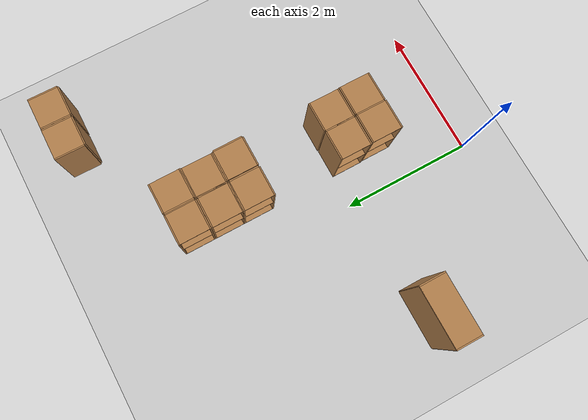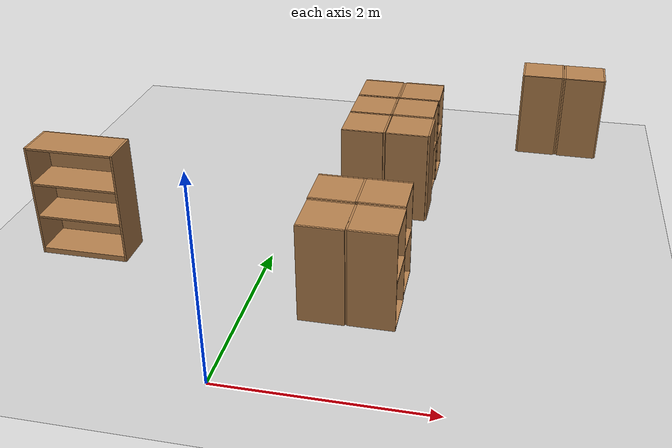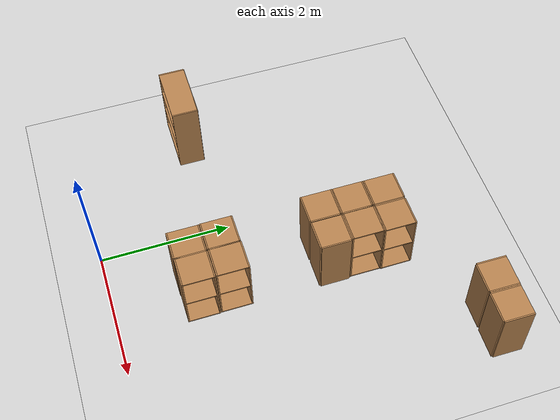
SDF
<sdf version="1.7">
 <world name="default">
  <model name="ground_plane">
   <static>1</static>
   <link name="link">
    <collision name="collision">
     <geometry><plane><normal>0 0 1</normal><size>100 100</size></plane></geometry>
     <surface>
      <contact><collide_bitmask>65535</collide_bitmask></contact>
      <friction><ode><mu>100</mu><mu2>50</mu2></ode></friction>
     </surface>
    </collision>
    <visual name="visual">
     <cast_shadows>0</cast_shadows>
     <geometry><plane><normal>0 0 1</normal><size>100 100</size></plane></geometry>
     <material>
      <script><uri>file://media/materials/scripts/gazebo.material</uri><name>Gazebo/Grey</name></script>
     </material>
    </visual>
   </link>
  </model>
  <model name="cabinet">
   <static>1</static>
   <link name="cabinet_bottom_plate">
    <inertial>
     <pose>0 0 -1 0 -0 0</pose>
     <inertia><ixx>2.05</ixx><ixy>0</ixy><ixz>0</ixz><iyy>2.05</iyy><iyz>0</iyz><izz>2.05</izz></inertia>
     <mass>25</mass>
    </inertial>
    <collision name="cabinet_bottom_plate_geom">
     <pose>0 0 0.01 0 -0 0</pose>
     <geometry><box><size>0.45 0.45 0.02</size></box></geometry>
    </collision>
    <visual name="cabinet_bottom_plate_geom_visual">
     <pose>0 0 0.01 0 -0 0</pose>
     <geometry><box><size>0.45 0.45 0.02</size></box></geometry>
     <material>
      <script><uri>file://media/materials/scripts/gazebo.material</uri><name>Gazebo/Wood</name></script>
     </material>
    </visual>
    <collision name="cabinet_bottom_plate_geom_cabinet_back_plate">
     <pose>0.235 0 0.51 0 -0 0</pose>
     <geometry><box><size>0.02 0.45 1.02</size></box></geometry>
    </collision>
    <visual name="cabinet_bottom_plate_geom_cabinet_back_plate_visual">
     <pose>0.235 0 0.51 0 -0 0</pose>
     <geometry><box><size>0.02 0.45 1.02</size></box></geometry>
     <material>
      <script><uri>file://media/materials/scripts/gazebo.material</uri><name>Gazebo/Wood</name></script>
     </material>
    </visual>
    <collision name="cabinet_bottom_plate_geom_cabinet_left_plate">
     <pose>0 0.235 0.51 0 -0 0</pose>
     <geometry><box><size>0.45 0.02 1.02</size></box></geometry>
    </collision>
    <visual name="cabinet_bottom_plate_geom_cabinet_left_plate_visual">
     <pose>0 0.235 0.51 0 -0 0</pose>
     <geometry><box><size>0.45 0.02 1.02</size></box></geometry>
     <material>
      <script><uri>file://media/materials/scripts/gazebo.material</uri><name>Gazebo/Wood</name></script>
     </material>
    </visual>
    <collision name="cabinet_bottom_plate_geom_cabinet_middle_plate">
     <pose>0 0 0.51 0 -0 0</pose>
     <geometry><box><size>0.45 0.45 0.02</size></box></geometry>
    </collision>
    <visual name="cabinet_bottom_plate_geom_cabinet_middle_plate_visual">
     <pose>0 0 0.51 0 -0 0</pose>
     <geometry><box><size>0.45 0.45 0.02</size></box></geometry>
     <material>
      <script><uri>file://media/materials/scripts/gazebo.material</uri><name>Gazebo/Wood</name></script>
     </material>
    </visual>
    <collision name="cabinet_bottom_plate_geom_cabinet_right_plate">
     <pose>0 -0.235 0.51 0 -0 0</pose>
     <geometry><box><size>0.45 0.02 1.02</size></box></geometry>
    </collision>
    <visual name="cabinet_bottom_plate_geom_cabinet_right_plate_visual">
     <pose>0 -0.235 0.51 0 -0 0</pose>
     <geometry><box><size>0.45 0.02 1.02</size></box></geometry>
     <material>
      <script><uri>file://media/materials/scripts/gazebo.material</uri><name>Gazebo/Wood</name></script>
     </material>
    </visual>
    <collision name="cabinet_bottom_plate_geom_cabinet_top_plate">
     <pose>0 0 1.01 0 -0 0</pose>
     <geometry><box><size>0.45 0.45 0.02</size></box></geometry>
    </collision>
    <visual name="cabinet_bottom_plate_geom_cabinet_top_plate_visual">
     <pose>0 0 1.01 0 -0 0</pose>
     <geometry><box><size>0.45 0.45 0.02</size></box></geometry>
     <material>
      <script><uri>file://media/materials/scripts/gazebo.material</uri><name>Gazebo/Wood</name></script>
     </material>
    </visual>
   </link>
   <pose>0.741021 4.23586 0 0 -0 0</pose>
  </model>
  <model name="cabinet_0">
   <static>1</static>
   <link name="cabinet_bottom_plate">
    <inertial>
     <pose>0 0 -1 0 -0 0</pose>
     <inertia><ixx>2.05</ixx><ixy>0</ixy><ixz>0</ixz><iyy>2.05</iyy><iyz>0</iyz><izz>2.05</izz></inertia>
     <mass>25</mass>
    </inertial>
    <collision name="cabinet_bottom_plate_geom">
     <pose>0 0 0.01 0 -0 0</pose>
     <geometry><box><size>0.45 0.45 0.02</size></box></geometry>
    </collision>
    <visual name="cabinet_bottom_plate_geom_visual">
     <pose>0 0 0.01 0 -0 0</pose>
     <geometry><box><size>0.45 0.45 0.02</size></box></geometry>
     <material>
      <script><uri>file://media/materials/scripts/gazebo.material</uri><name>Gazebo/Wood</name></script>
     </material>
    </visual>
    <collision name="cabinet_bottom_plate_geom_cabinet_back_plate">
     <pose>0.235 0 0.51 0 -0 0</pose>
     <geometry><box><size>0.02 0.45 1.02</size></box></geometry>
    </collision>
    <visual name="cabinet_bottom_plate_geom_cabinet_back_plate_visual">
     <pose>0.235 0 0.51 0 -0 0</pose>
     <geometry><box><size>0.02 0.45 1.02</size></box></geometry>
     <material>
      <script><uri>file://media/materials/scripts/gazebo.material</uri><name>Gazebo/Wood</name></script>
     </material>
    </visual>
    <collision name="cabinet_bottom_plate_geom_cabinet_left_plate">
     <pose>0 0.235 0.51 0 -0 0</pose>
     <geometry><box><size>0.45 0.02 1.02</size></box></geometry>
    </collision>
    <visual name="cabinet_bottom_plate_geom_cabinet_left_plate_visual">
     <pose>0 0.235 0.51 0 -0 0</pose>
     <geometry><box><size>0.45 0.02 1.02</size></box></geometry>
     <material>
      <script><uri>file://media/materials/scripts/gazebo.material</uri><name>Gazebo/Wood</name></script>
     </material>
    </visual>
    <collision name="cabinet_bottom_plate_geom_cabinet_middle_plate">
     <pose>0 0 0.51 0 -0 0</pose>
     <geometry><box><size>0.45 0.45 0.02</size></box></geometry>
    </collision>
    <visual name="cabinet_bottom_plate_geom_cabinet_middle_plate_visual">
     <pose>0 0 0.51 0 -0 0</pose>
     <geometry><box><size>0.45 0.45 0.02</size></box></geometry>
     <material>
      <script><uri>file://media/materials/scripts/gazebo.material</uri><name>Gazebo/Wood</name></script>
     </material>
    </visual>
    <collision name="cabinet_bottom_plate_geom_cabinet_right_plate">
     <pose>0 -0.235 0.51 0 -0 0</pose>
     <geometry><box><size>0.45 0.02 1.02</size></box></geometry>
    </collision>
    <visual name="cabinet_bottom_plate_geom_cabinet_right_plate_visual">
     <pose>0 -0.235 0.51 0 -0 0</pose>
     <geometry><box><size>0.45 0.02 1.02</size></box></geometry>
     <material>
      <script><uri>file://media/materials/scripts/gazebo.material</uri><name>Gazebo/Wood</name></script>
     </material>
    </visual>
    <collision name="cabinet_bottom_plate_geom_cabinet_top_plate">
     <pose>0 0 1.01 0 -0 0</pose>
     <geometry><box><size>0.45 0.45 0.02</size></box></geometry>
    </collision>
    <visual name="cabinet_bottom_plate_geom_cabinet_top_plate_visual">
     <pose>0 0 1.01 0 -0 0</pose>
     <geometry><box><size>0.45 0.45 0.02</size></box></geometry>
     <material>
      <script><uri>file://media/materials/scripts/gazebo.material</uri><name>Gazebo/Wood</name></script>
     </material>
    </visual>
   </link>
   <pose>0.740494 3.74263 0 0 -0 0</pose>
  </model>
  <model name="cabinet_1">
   <static>1</static>
   <link name="cabinet_bottom_plate">
    <inertial>
     <pose>0 0 -1 0 -0 0</pose>
     <inertia><ixx>2.05</ixx><ixy>0</ixy><ixz>0</ixz><iyy>2.05</iyy><iyz>0</iyz><izz>2.05</izz></inertia>
     <mass>25</mass>
    </inertial>
    <collision name="cabinet_bottom_plate_geom">
     <pose>0 0 0.01 0 -0 0</pose>
     <geometry><box><size>0.45 0.45 0.02</size></box></geometry>
    </collision>
    <visual name="cabinet_bottom_plate_geom_visual">
     <pose>0 0 0.01 0 -0 0</pose>
     <geometry><box><size>0.45 0.45 0.02</size></box></geometry>
     <material>
      <script><uri>file://media/materials/scripts/gazebo.material</uri><name>Gazebo/Wood</name></script>
     </material>
    </visual>
    <collision name="cabinet_bottom_plate_geom_cabinet_back_plate">
     <pose>0.235 0 0.51 0 -0 0</pose>
     <geometry><box><size>0.02 0.45 1.02</size></box></geometry>
    </collision>
    <visual name="cabinet_bottom_plate_geom_cabinet_back_plate_visual">
     <pose>0.235 0 0.51 0 -0 0</pose>
     <geometry><box><size>0.02 0.45 1.02</size></box></geometry>
     <material>
      <script><uri>file://media/materials/scripts/gazebo.material</uri><name>Gazebo/Wood</name></script>
     </material>
    </visual>
    <collision name="cabinet_bottom_plate_geom_cabinet_left_plate">
     <pose>0 0.235 0.51 0 -0 0</pose>
     <geometry><box><size>0.45 0.02 1.02</size></box></geometry>
    </collision>
    <visual name="cabinet_bottom_plate_geom_cabinet_left_plate_visual">
     <pose>0 0.235 0.51 0 -0 0</pose>
     <geometry><box><size>0.45 0.02 1.02</size></box></geometry>
     <material>
      <script><uri>file://media/materials/scripts/gazebo.material</uri><name>Gazebo/Wood</name></script>
     </material>
    </visual>
    <collision name="cabinet_bottom_plate_geom_cabinet_middle_plate">
     <pose>0 0 0.51 0 -0 0</pose>
     <geometry><box><size>0.45 0.45 0.02</size></box></geometry>
    </collision>
    <visual name="cabinet_bottom_plate_geom_cabinet_middle_plate_visual">
     <pose>0 0 0.51 0 -0 0</pose>
     <geometry><box><size>0.45 0.45 0.02</size></box></geometry>
     <material>
      <script><uri>file://media/materials/scripts/gazebo.material</uri><name>Gazebo/Wood</name></script>
     </material>
    </visual>
    <collision name="cabinet_bottom_plate_geom_cabinet_right_plate">
     <pose>0 -0.235 0.51 0 -0 0</pose>
     <geometry><box><size>0.45 0.02 1.02</size></box></geometry>
    </collision>
    <visual name="cabinet_bottom_plate_geom_cabinet_right_plate_visual">
     <pose>0 -0.235 0.51 0 -0 0</pose>
     <geometry><box><size>0.45 0.02 1.02</size></box></geometry>
     <material>
      <script><uri>file://media/materials/scripts/gazebo.material</uri><name>Gazebo/Wood</name></script>
     </material>
    </visual>
    <collision name="cabinet_bottom_plate_geom_cabinet_top_plate">
     <pose>0 0 1.01 0 -0 0</pose>
     <geometry><box><size>0.45 0.45 0.02</size></box></geometry>
    </collision>
    <visual name="cabinet_bottom_plate_geom_cabinet_top_plate_visual">
     <pose>0 0 1.01 0 -0 0</pose>
     <geometry><box><size>0.45 0.45 0.02</size></box></geometry>
     <material>
      <script><uri>file://media/materials/scripts/gazebo.material</uri><name>Gazebo/Wood</name></script>
     </material>
    </visual>
   </link>
   <pose>0.739877 3.25825 0 0 -0 0</pose>
  </model>
  <model name="cabinet_1_clone">
   <static>1</static>
   <link name="cabinet_bottom_plate">
    <inertial>
     <pose>0 0 -1 0 -0 0</pose>
     <inertia><ixx>2.05</ixx><ixy>0</ixy><ixz>0</ixz><iyy>2.05</iyy><iyz>0</iyz><izz>2.05</izz></inertia>
     <mass>25</mass>
    </inertial>
    <collision name="cabinet_bottom_plate_geom">
     <pose>0 0 0.01 0 -0 0</pose>
     <geometry><box><size>0.45 0.45 0.02</size></box></geometry>
    </collision>
    <visual name="cabinet_bottom_plate_geom_visual">
     <pose>0 0 0.01 0 -0 0</pose>
     <geometry><box><size>0.45 0.45 0.02</size></box></geometry>
     <material>
      <script><uri>file://media/materials/scripts/gazebo.material</uri><name>Gazebo/Wood</name></script>
     </material>
    </visual>
    <collision name="cabinet_bottom_plate_geom_cabinet_back_plate">
     <pose>0.235 0 0.51 0 -0 0</pose>
     <geometry><box><size>0.02 0.45 1.02</size></box></geometry>
    </collision>
    <visual name="cabinet_bottom_plate_geom_cabinet_back_plate_visual">
     <pose>0.235 0 0.51 0 -0 0</pose>
     <geometry><box><size>0.02 0.45 1.02</size></box></geometry>
     <material>
      <script><uri>file://media/materials/scripts/gazebo.material</uri><name>Gazebo/Wood</name></script>
     </material>
    </visual>
    <collision name="cabinet_bottom_plate_geom_cabinet_left_plate">
     <pose>0 0.235 0.51 0 -0 0</pose>
     <geometry><box><size>0.45 0.02 1.02</size></box></geometry>
    </collision>
    <visual name="cabinet_bottom_plate_geom_cabinet_left_plate_visual">
     <pose>0 0.235 0.51 0 -0 0</pose>
     <geometry><box><size>0.45 0.02 1.02</size></box></geometry>
     <material>
      <script><uri>file://media/materials/scripts/gazebo.material</uri><name>Gazebo/Wood</name></script>
     </material>
    </visual>
    <collision name="cabinet_bottom_plate_geom_cabinet_middle_plate">
     <pose>0 0 0.51 0 -0 0</pose>
     <geometry><box><size>0.45 0.45 0.02</size></box></geometry>
    </collision>
    <visual name="cabinet_bottom_plate_geom_cabinet_middle_plate_visual">
     <pose>0 0 0.51 0 -0 0</pose>
     <geometry><box><size>0.45 0.45 0.02</size></box></geometry>
     <material>
      <script><uri>file://media/materials/scripts/gazebo.material</uri><name>Gazebo/Wood</name></script>
     </material>
    </visual>
    <collision name="cabinet_bottom_plate_geom_cabinet_right_plate">
     <pose>0 -0.235 0.51 0 -0 0</pose>
     <geometry><box><size>0.45 0.02 1.02</size></box></geometry>
    </collision>
    <visual name="cabinet_bottom_plate_geom_cabinet_right_plate_visual">
     <pose>0 -0.235 0.51 0 -0 0</pose>
     <geometry><box><size>0.45 0.02 1.02</size></box></geometry>
     <material>
      <script><uri>file://media/materials/scripts/gazebo.material</uri><name>Gazebo/Wood</name></script>
     </material>
    </visual>
    <collision name="cabinet_bottom_plate_geom_cabinet_top_plate">
     <pose>0 0 1.01 0 -0 0</pose>
     <geometry><box><size>0.45 0.45 0.02</size></box></geometry>
    </collision>
    <visual name="cabinet_bottom_plate_geom_cabinet_top_plate_visual">
     <pose>0 0 1.01 0 -0 0</pose>
     <geometry><box><size>0.45 0.45 0.02</size></box></geometry>
     <material>
      <script><uri>file://media/materials/scripts/gazebo.material</uri><name>Gazebo/Wood</name></script>
     </material>
    </visual>
   </link>
   <pose>0.742442 1.74322 0 0 -0 0</pose>
  </model>
  <model name="cabinet_1_clone_0">
   <static>1</static>
   <link name="cabinet_bottom_plate">
    <inertial>
     <pose>0 0 -1 0 -0 0</pose>
     <inertia><ixx>2.05</ixx><ixy>0</ixy><ixz>0</ixz><iyy>2.05</iyy><iyz>0</iyz><izz>2.05</izz></inertia>
     <mass>25</mass>
    </inertial>
    <collision name="cabinet_bottom_plate_geom">
     <pose>0 0 0.01 0 -0 0</pose>
     <geometry><box><size>0.45 0.45 0.02</size></box></geometry>
    </collision>
    <visual name="cabinet_bottom_plate_geom_visual">
     <pose>0 0 0.01 0 -0 0</pose>
     <geometry><box><size>0.45 0.45 0.02</size></box></geometry>
     <material>
      <script><uri>file://media/materials/scripts/gazebo.material</uri><name>Gazebo/Wood</name></script>
     </material>
    </visual>
    <collision name="cabinet_bottom_plate_geom_cabinet_back_plate">
     <pose>0.235 0 0.51 0 -0 0</pose>
     <geometry><box><size>0.02 0.45 1.02</size></box></geometry>
    </collision>
    <visual name="cabinet_bottom_plate_geom_cabinet_back_plate_visual">
     <pose>0.235 0 0.51 0 -0 0</pose>
     <geometry><box><size>0.02 0.45 1.02</size></box></geometry>
     <material>
      <script><uri>file://media/materials/scripts/gazebo.material</uri><name>Gazebo/Wood</name></script>
     </material>
    </visual>
    <collision name="cabinet_bottom_plate_geom_cabinet_left_plate">
     <pose>0 0.235 0.51 0 -0 0</pose>
     <geometry><box><size>0.45 0.02 1.02</size></box></geometry>
    </collision>
    <visual name="cabinet_bottom_plate_geom_cabinet_left_plate_visual">
     <pose>0 0.235 0.51 0 -0 0</pose>
     <geometry><box><size>0.45 0.02 1.02</size></box></geometry>
     <material>
      <script><uri>file://media/materials/scripts/gazebo.material</uri><name>Gazebo/Wood</name></script>
     </material>
    </visual>
    <collision name="cabinet_bottom_plate_geom_cabinet_middle_plate">
     <pose>0 0 0.51 0 -0 0</pose>
     <geometry><box><size>0.45 0.45 0.02</size></box></geometry>
    </collision>
    <visual name="cabinet_bottom_plate_geom_cabinet_middle_plate_visual">
     <pose>0 0 0.51 0 -0 0</pose>
     <geometry><box><size>0.45 0.45 0.02</size></box></geometry>
     <material>
      <script><uri>file://media/materials/scripts/gazebo.material</uri><name>Gazebo/Wood</name></script>
     </material>
    </visual>
    <collision name="cabinet_bottom_plate_geom_cabinet_right_plate">
     <pose>0 -0.235 0.51 0 -0 0</pose>
     <geometry><box><size>0.45 0.02 1.02</size></box></geometry>
    </collision>
    <visual name="cabinet_bottom_plate_geom_cabinet_right_plate_visual">
     <pose>0 -0.235 0.51 0 -0 0</pose>
     <geometry><box><size>0.45 0.02 1.02</size></box></geometry>
     <material>
      <script><uri>file://media/materials/scripts/gazebo.material</uri><name>Gazebo/Wood</name></script>
     </material>
    </visual>
    <collision name="cabinet_bottom_plate_geom_cabinet_top_plate">
     <pose>0 0 1.01 0 -0 0</pose>
     <geometry><box><size>0.45 0.45 0.02</size></box></geometry>
    </collision>
    <visual name="cabinet_bottom_plate_geom_cabinet_top_plate_visual">
     <pose>0 0 1.01 0 -0 0</pose>
     <geometry><box><size>0.45 0.45 0.02</size></box></geometry>
     <material>
      <script><uri>file://media/materials/scripts/gazebo.material</uri><name>Gazebo/Wood</name></script>
     </material>
    </visual>
   </link>
   <pose>0.750838 1.24697 0 0 -0 0</pose>
  </model>
  <model name="cabinet_clone">
   <static>1</static>
   <link name="cabinet_bottom_plate">
    <inertial>
     <pose>0 0 -1 0 -0 0</pose>
     <inertia><ixx>2.05</ixx><ixy>0</ixy><ixz>0</ixz><iyy>2.05</iyy><iyz>0</iyz><izz>2.05</izz></inertia>
     <mass>25</mass>
    </inertial>
    <collision name="cabinet_bottom_plate_geom">
     <pose>0 0 0.01 0 -0 0</pose>
     <geometry><box><size>0.45 0.45 0.02</size></box></geometry>
    </collision>
    <visual name="cabinet_bottom_plate_geom_visual">
     <pose>0 0 0.01 0 -0 0</pose>
     <geometry><box><size>0.45 0.45 0.02</size></box></geometry>
     <material>
      <script><uri>file://media/materials/scripts/gazebo.material</uri><name>Gazebo/Wood</name></script>
     </material>
    </visual>
    <collision name="cabinet_bottom_plate_geom_cabinet_back_plate">
     <pose>0.235 0 0.51 0 -0 0</pose>
     <geometry><box><size>0.02 0.45 1.02</size></box></geometry>
    </collision>
    <visual name="cabinet_bottom_plate_geom_cabinet_back_plate_visual">
     <pose>0.235 0 0.51 0 -0 0</pose>
     <geometry><box><size>0.02 0.45 1.02</size></box></geometry>
     <material>
      <script><uri>file://media/materials/scripts/gazebo.material</uri><name>Gazebo/Wood</name></script>
     </material>
    </visual>
    <collision name="cabinet_bottom_plate_geom_cabinet_left_plate">
     <pose>0 0.235 0.51 0 -0 0</pose>
     <geometry><box><size>0.45 0.02 1.02</size></box></geometry>
    </collision>
    <visual name="cabinet_bottom_plate_geom_cabinet_left_plate_visual">
     <pose>0 0.235 0.51 0 -0 0</pose>
     <geometry><box><size>0.45 0.02 1.02</size></box></geometry>
     <material>
      <script><uri>file://media/materials/scripts/gazebo.material</uri><name>Gazebo/Wood</name></script>
     </material>
    </visual>
    <collision name="cabinet_bottom_plate_geom_cabinet_middle_plate">
     <pose>0 0 0.51 0 -0 0</pose>
     <geometry><box><size>0.45 0.45 0.02</size></box></geometry>
    </collision>
    <visual name="cabinet_bottom_plate_geom_cabinet_middle_plate_visual">
     <pose>0 0 0.51 0 -0 0</pose>
     <geometry><box><size>0.45 0.45 0.02</size></box></geometry>
     <material>
      <script><uri>file://media/materials/scripts/gazebo.material</uri><name>Gazebo/Wood</name></script>
     </material>
    </visual>
    <collision name="cabinet_bottom_plate_geom_cabinet_right_plate">
     <pose>0 -0.235 0.51 0 -0 0</pose>
     <geometry><box><size>0.45 0.02 1.02</size></box></geometry>
    </collision>
    <visual name="cabinet_bottom_plate_geom_cabinet_right_plate_visual">
     <pose>0 -0.235 0.51 0 -0 0</pose>
     <geometry><box><size>0.45 0.02 1.02</size></box></geometry>
     <material>
      <script><uri>file://media/materials/scripts/gazebo.material</uri><name>Gazebo/Wood</name></script>
     </material>
    </visual>
    <collision name="cabinet_bottom_plate_geom_cabinet_top_plate">
     <pose>0 0 1.01 0 -0 0</pose>
     <geometry><box><size>0.45 0.45 0.02</size></box></geometry>
    </collision>
    <visual name="cabinet_bottom_plate_geom_cabinet_top_plate_visual">
     <pose>0 0 1.01 0 -0 0</pose>
     <geometry><box><size>0.45 0.45 0.02</size></box></geometry>
     <material>
      <script><uri>file://media/materials/scripts/gazebo.material</uri><name>Gazebo/Wood</name></script>
     </material>
    </visual>
   </link>
   <pose>3.09381 5.21485 0 0 0 -1.58352</pose>
  </model>
  <model name="cabinet_clone_clone">
   <static>1</static>
   <link name="cabinet_bottom_plate">
    <inertial>
     <pose>0 0 -1 0 -0 0</pose>
     <inertia><ixx>2.05</ixx><ixy>0</ixy><ixz>0</ixz><iyy>2.05</iyy><iyz>0</iyz><izz>2.05</izz></inertia>
     <mass>25</mass>
    </inertial>
    <collision name="cabinet_bottom_plate_geom">
     <pose>0 0 0.01 0 -0 0</pose>
     <geometry><box><size>0.45 0.45 0.02</size></box></geometry>
    </collision>
    <visual name="cabinet_bottom_plate_geom_visual">
     <pose>0 0 0.01 0 -0 0</pose>
     <geometry><box><size>0.45 0.45 0.02</size></box></geometry>
     <material>
      <script><uri>file://media/materials/scripts/gazebo.material</uri><name>Gazebo/Wood</name></script>
     </material>
    </visual>
    <collision name="cabinet_bottom_plate_geom_cabinet_back_plate">
     <pose>0.235 0 0.51 0 -0 0</pose>
     <geometry><box><size>0.02 0.45 1.02</size></box></geometry>
    </collision>
    <visual name="cabinet_bottom_plate_geom_cabinet_back_plate_visual">
     <pose>0.235 0 0.51 0 -0 0</pose>
     <geometry><box><size>0.02 0.45 1.02</size></box></geometry>
     <material>
      <script><uri>file://media/materials/scripts/gazebo.material</uri><name>Gazebo/Wood</name></script>
     </material>
    </visual>
    <collision name="cabinet_bottom_plate_geom_cabinet_left_plate">
     <pose>0 0.235 0.51 0 -0 0</pose>
     <geometry><box><size>0.45 0.02 1.02</size></box></geometry>
    </collision>
    <visual name="cabinet_bottom_plate_geom_cabinet_left_plate_visual">
     <pose>0 0.235 0.51 0 -0 0</pose>
     <geometry><box><size>0.45 0.02 1.02</size></box></geometry>
     <material>
      <script><uri>file://media/materials/scripts/gazebo.material</uri><name>Gazebo/Wood</name></script>
     </material>
    </visual>
    <collision name="cabinet_bottom_plate_geom_cabinet_middle_plate">
     <pose>0 0 0.51 0 -0 0</pose>
     <geometry><box><size>0.45 0.45 0.02</size></box></geometry>
    </collision>
    <visual name="cabinet_bottom_plate_geom_cabinet_middle_plate_visual">
     <pose>0 0 0.51 0 -0 0</pose>
     <geometry><box><size>0.45 0.45 0.02</size></box></geometry>
     <material>
      <script><uri>file://media/materials/scripts/gazebo.material</uri><name>Gazebo/Wood</name></script>
     </material>
    </visual>
    <collision name="cabinet_bottom_plate_geom_cabinet_right_plate">
     <pose>0 -0.235 0.51 0 -0 0</pose>
     <geometry><box><size>0.45 0.02 1.02</size></box></geometry>
    </collision>
    <visual name="cabinet_bottom_plate_geom_cabinet_right_plate_visual">
     <pose>0 -0.235 0.51 0 -0 0</pose>
     <geometry><box><size>0.45 0.02 1.02</size></box></geometry>
     <material>
      <script><uri>file://media/materials/scripts/gazebo.material</uri><name>Gazebo/Wood</name></script>
     </material>
    </visual>
    <collision name="cabinet_bottom_plate_geom_cabinet_top_plate">
     <pose>0 0 1.01 0 -0 0</pose>
     <geometry><box><size>0.45 0.45 0.02</size></box></geometry>
    </collision>
    <visual name="cabinet_bottom_plate_geom_cabinet_top_plate_visual">
     <pose>0 0 1.01 0 -0 0</pose>
     <geometry><box><size>0.45 0.45 0.02</size></box></geometry>
     <material>
      <script><uri>file://media/materials/scripts/gazebo.material</uri><name>Gazebo/Wood</name></script>
     </material>
    </visual>
   </link>
   <pose>2.60288 5.22368 0 0 0 -1.58352</pose>
  </model>
  <model name="cabinet_clone_0">
   <static>1</static>
   <link name="cabinet_bottom_plate">
    <inertial>
     <pose>0 0 -1 0 -0 0</pose>
     <inertia><ixx>2.05</ixx><ixy>0</ixy><ixz>0</ixz><iyy>2.05</iyy><iyz>0</iyz><izz>2.05</izz></inertia>
     <mass>25</mass>
    </inertial>
    <collision name="cabinet_bottom_plate_geom">
     <pose>0 0 0.01 0 -0 0</pose>
     <geometry><box><size>0.45 0.45 0.02</size></box></geometry>
    </collision>
    <visual name="cabinet_bottom_plate_geom_visual">
     <pose>0 0 0.01 0 -0 0</pose>
     <geometry><box><size>0.45 0.45 0.02</size></box></geometry>
     <material>
      <script><uri>file://media/materials/scripts/gazebo.material</uri><name>Gazebo/Wood</name></script>
     </material>
    </visual>
    <collision name="cabinet_bottom_plate_geom_cabinet_back_plate">
     <pose>0.235 0 0.51 0 -0 0</pose>
     <geometry><box><size>0.02 0.45 1.02</size></box></geometry>
    </collision>
    <visual name="cabinet_bottom_plate_geom_cabinet_back_plate_visual">
     <pose>0.235 0 0.51 0 -0 0</pose>
     <geometry><box><size>0.02 0.45 1.02</size></box></geometry>
     <material>
      <script><uri>file://media/materials/scripts/gazebo.material</uri><name>Gazebo/Wood</name></script>
     </material>
    </visual>
    <collision name="cabinet_bottom_plate_geom_cabinet_left_plate">
     <pose>0 0.235 0.51 0 -0 0</pose>
     <geometry><box><size>0.45 0.02 1.02</size></box></geometry>
    </collision>
    <visual name="cabinet_bottom_plate_geom_cabinet_left_plate_visual">
     <pose>0 0.235 0.51 0 -0 0</pose>
     <geometry><box><size>0.45 0.02 1.02</size></box></geometry>
     <material>
      <script><uri>file://media/materials/scripts/gazebo.material</uri><name>Gazebo/Wood</name></script>
     </material>
    </visual>
    <collision name="cabinet_bottom_plate_geom_cabinet_middle_plate">
     <pose>0 0 0.51 0 -0 0</pose>
     <geometry><box><size>0.45 0.45 0.02</size></box></geometry>
    </collision>
    <visual name="cabinet_bottom_plate_geom_cabinet_middle_plate_visual">
     <pose>0 0 0.51 0 -0 0</pose>
     <geometry><box><size>0.45 0.45 0.02</size></box></geometry>
     <material>
      <script><uri>file://media/materials/scripts/gazebo.material</uri><name>Gazebo/Wood</name></script>
     </material>
    </visual>
    <collision name="cabinet_bottom_plate_geom_cabinet_right_plate">
     <pose>0 -0.235 0.51 0 -0 0</pose>
     <geometry><box><size>0.45 0.02 1.02</size></box></geometry>
    </collision>
    <visual name="cabinet_bottom_plate_geom_cabinet_right_plate_visual">
     <pose>0 -0.235 0.51 0 -0 0</pose>
     <geometry><box><size>0.45 0.02 1.02</size></box></geometry>
     <material>
      <script><uri>file://media/materials/scripts/gazebo.material</uri><name>Gazebo/Wood</name></script>
     </material>
    </visual>
    <collision name="cabinet_bottom_plate_geom_cabinet_top_plate">
     <pose>0 0 1.01 0 -0 0</pose>
     <geometry><box><size>0.45 0.45 0.02</size></box></geometry>
    </collision>
    <visual name="cabinet_bottom_plate_geom_cabinet_top_plate_visual">
     <pose>0 0 1.01 0 -0 0</pose>
     <geometry><box><size>0.45 0.45 0.02</size></box></geometry>
     <material>
      <script><uri>file://media/materials/scripts/gazebo.material</uri><name>Gazebo/Wood</name></script>
     </material>
    </visual>
   </link>
   <pose>1.22598 4.23696 0 0 0 -3.14016</pose>
  </model>
  <model name="cabinet_clone_1">
   <static>1</static>
   <link name="cabinet_bottom_plate">
    <inertial>
     <pose>0 0 -1 0 -0 0</pose>
     <inertia><ixx>2.05</ixx><ixy>0</ixy><ixz>0</ixz><iyy>2.05</iyy><iyz>0</iyz><izz>2.05</izz></inertia>
     <mass>25</mass>
    </inertial>
    <collision name="cabinet_bottom_plate_geom">
     <pose>0 0 0.01 0 -0 0</pose>
     <geometry><box><size>0.45 0.45 0.02</size></box></geometry>
    </collision>
    <visual name="cabinet_bottom_plate_geom_visual">
     <pose>0 0 0.01 0 -0 0</pose>
     <geometry><box><size>0.45 0.45 0.02</size></box></geometry>
     <material>
      <script><uri>file://media/materials/scripts/gazebo.material</uri><name>Gazebo/Wood</name></script>
     </material>
    </visual>
    <collision name="cabinet_bottom_plate_geom_cabinet_back_plate">
     <pose>0.235 0 0.51 0 -0 0</pose>
     <geometry><box><size>0.02 0.45 1.02</size></box></geometry>
    </collision>
    <visual name="cabinet_bottom_plate_geom_cabinet_back_plate_visual">
     <pose>0.235 0 0.51 0 -0 0</pose>
     <geometry><box><size>0.02 0.45 1.02</size></box></geometry>
     <material>
      <script><uri>file://media/materials/scripts/gazebo.material</uri><name>Gazebo/Wood</name></script>
     </material>
    </visual>
    <collision name="cabinet_bottom_plate_geom_cabinet_left_plate">
     <pose>0 0.235 0.51 0 -0 0</pose>
     <geometry><box><size>0.45 0.02 1.02</size></box></geometry>
    </collision>
    <visual name="cabinet_bottom_plate_geom_cabinet_left_plate_visual">
     <pose>0 0.235 0.51 0 -0 0</pose>
     <geometry><box><size>0.45 0.02 1.02</size></box></geometry>
     <material>
      <script><uri>file://media/materials/scripts/gazebo.material</uri><name>Gazebo/Wood</name></script>
     </material>
    </visual>
    <collision name="cabinet_bottom_plate_geom_cabinet_middle_plate">
     <pose>0 0 0.51 0 -0 0</pose>
     <geometry><box><size>0.45 0.45 0.02</size></box></geometry>
    </collision>
    <visual name="cabinet_bottom_plate_geom_cabinet_middle_plate_visual">
     <pose>0 0 0.51 0 -0 0</pose>
     <geometry><box><size>0.45 0.45 0.02</size></box></geometry>
     <material>
      <script><uri>file://media/materials/scripts/gazebo.material</uri><name>Gazebo/Wood</name></script>
     </material>
    </visual>
    <collision name="cabinet_bottom_plate_geom_cabinet_right_plate">
     <pose>0 -0.235 0.51 0 -0 0</pose>
     <geometry><box><size>0.45 0.02 1.02</size></box></geometry>
    </collision>
    <visual name="cabinet_bottom_plate_geom_cabinet_right_plate_visual">
     <pose>0 -0.235 0.51 0 -0 0</pose>
     <geometry><box><size>0.45 0.02 1.02</size></box></geometry>
     <material>
      <script><uri>file://media/materials/scripts/gazebo.material</uri><name>Gazebo/Wood</name></script>
     </material>
    </visual>
    <collision name="cabinet_bottom_plate_geom_cabinet_top_plate">
     <pose>0 0 1.01 0 -0 0</pose>
     <geometry><box><size>0.45 0.45 0.02</size></box></geometry>
    </collision>
    <visual name="cabinet_bottom_plate_geom_cabinet_top_plate_visual">
     <pose>0 0 1.01 0 -0 0</pose>
     <geometry><box><size>0.45 0.45 0.02</size></box></geometry>
     <material>
      <script><uri>file://media/materials/scripts/gazebo.material</uri><name>Gazebo/Wood</name></script>
     </material>
    </visual>
   </link>
   <pose>1.2155 3.75232 0 0 -0 3.13868</pose>
  </model>
  <model name="cabinet_clone_2">
   <static>1</static>
   <link name="cabinet_bottom_plate">
    <inertial>
     <pose>0 0 -1 0 -0 0</pose>
     <inertia><ixx>2.05</ixx><ixy>0</ixy><ixz>0</ixz><iyy>2.05</iyy><iyz>0</iyz><izz>2.05</izz></inertia>
     <mass>25</mass>
    </inertial>
    <collision name="cabinet_bottom_plate_geom">
     <pose>0 0 0.01 0 -0 0</pose>
     <geometry><box><size>0.45 0.45 0.02</size></box></geometry>
    </collision>
    <visual name="cabinet_bottom_plate_geom_visual">
     <pose>0 0 0.01 0 -0 0</pose>
     <geometry><box><size>0.45 0.45 0.02</size></box></geometry>
     <material>
      <script><uri>file://media/materials/scripts/gazebo.material</uri><name>Gazebo/Wood</name></script>
     </material>
    </visual>
    <collision name="cabinet_bottom_plate_geom_cabinet_back_plate">
     <pose>0.235 0 0.51 0 -0 0</pose>
     <geometry><box><size>0.02 0.45 1.02</size></box></geometry>
    </collision>
    <visual name="cabinet_bottom_plate_geom_cabinet_back_plate_visual">
     <pose>0.235 0 0.51 0 -0 0</pose>
     <geometry><box><size>0.02 0.45 1.02</size></box></geometry>
     <material>
      <script><uri>file://media/materials/scripts/gazebo.material</uri><name>Gazebo/Wood</name></script>
     </material>
    </visual>
    <collision name="cabinet_bottom_plate_geom_cabinet_left_plate">
     <pose>0 0.235 0.51 0 -0 0</pose>
     <geometry><box><size>0.45 0.02 1.02</size></box></geometry>
    </collision>
    <visual name="cabinet_bottom_plate_geom_cabinet_left_plate_visual">
     <pose>0 0.235 0.51 0 -0 0</pose>
     <geometry><box><size>0.45 0.02 1.02</size></box></geometry>
     <material>
      <script><uri>file://media/materials/scripts/gazebo.material</uri><name>Gazebo/Wood</name></script>
     </material>
    </visual>
    <collision name="cabinet_bottom_plate_geom_cabinet_middle_plate">
     <pose>0 0 0.51 0 -0 0</pose>
     <geometry><box><size>0.45 0.45 0.02</size></box></geometry>
    </collision>
    <visual name="cabinet_bottom_plate_geom_cabinet_middle_plate_visual">
     <pose>0 0 0.51 0 -0 0</pose>
     <geometry><box><size>0.45 0.45 0.02</size></box></geometry>
     <material>
      <script><uri>file://media/materials/scripts/gazebo.material</uri><name>Gazebo/Wood</name></script>
     </material>
    </visual>
    <collision name="cabinet_bottom_plate_geom_cabinet_right_plate">
     <pose>0 -0.235 0.51 0 -0 0</pose>
     <geometry><box><size>0.45 0.02 1.02</size></box></geometry>
    </collision>
    <visual name="cabinet_bottom_plate_geom_cabinet_right_plate_visual">
     <pose>0 -0.235 0.51 0 -0 0</pose>
     <geometry><box><size>0.45 0.02 1.02</size></box></geometry>
     <material>
      <script><uri>file://media/materials/scripts/gazebo.material</uri><name>Gazebo/Wood</name></script>
     </material>
    </visual>
    <collision name="cabinet_bottom_plate_geom_cabinet_top_plate">
     <pose>0 0 1.01 0 -0 0</pose>
     <geometry><box><size>0.45 0.45 0.02</size></box></geometry>
    </collision>
    <visual name="cabinet_bottom_plate_geom_cabinet_top_plate_visual">
     <pose>0 0 1.01 0 -0 0</pose>
     <geometry><box><size>0.45 0.45 0.02</size></box></geometry>
     <material>
      <script><uri>file://media/materials/scripts/gazebo.material</uri><name>Gazebo/Wood</name></script>
     </material>
    </visual>
   </link>
   <pose>1.21847 3.26248 0 0 -0 0</pose>
  </model>
  <model name="cabinet_clone_2_clone">
   <static>1</static>
   <link name="cabinet_bottom_plate">
    <inertial>
     <pose>0 0 -1 0 -0 0</pose>
     <inertia><ixx>2.05</ixx><ixy>0</ixy><ixz>0</ixz><iyy>2.05</iyy><iyz>0</iyz><izz>2.05</izz></inertia>
     <mass>25</mass>
    </inertial>
    <collision name="cabinet_bottom_plate_geom">
     <pose>0 0 0.01 0 -0 0</pose>
     <geometry><box><size>0.45 0.45 0.02</size></box></geometry>
    </collision>
    <visual name="cabinet_bottom_plate_geom_visual">
     <pose>0 0 0.01 0 -0 0</pose>
     <geometry><box><size>0.45 0.45 0.02</size></box></geometry>
     <material>
      <script><uri>file://media/materials/scripts/gazebo.material</uri><name>Gazebo/Wood</name></script>
     </material>
    </visual>
    <collision name="cabinet_bottom_plate_geom_cabinet_back_plate">
     <pose>0.235 0 0.51 0 -0 0</pose>
     <geometry><box><size>0.02 0.45 1.02</size></box></geometry>
    </collision>
    <visual name="cabinet_bottom_plate_geom_cabinet_back_plate_visual">
     <pose>0.235 0 0.51 0 -0 0</pose>
     <geometry><box><size>0.02 0.45 1.02</size></box></geometry>
     <material>
      <script><uri>file://media/materials/scripts/gazebo.material</uri><name>Gazebo/Wood</name></script>
     </material>
    </visual>
    <collision name="cabinet_bottom_plate_geom_cabinet_left_plate">
     <pose>0 0.235 0.51 0 -0 0</pose>
     <geometry><box><size>0.45 0.02 1.02</size></box></geometry>
    </collision>
    <visual name="cabinet_bottom_plate_geom_cabinet_left_plate_visual">
     <pose>0 0.235 0.51 0 -0 0</pose>
     <geometry><box><size>0.45 0.02 1.02</size></box></geometry>
     <material>
      <script><uri>file://media/materials/scripts/gazebo.material</uri><name>Gazebo/Wood</name></script>
     </material>
    </visual>
    <collision name="cabinet_bottom_plate_geom_cabinet_middle_plate">
     <pose>0 0 0.51 0 -0 0</pose>
     <geometry><box><size>0.45 0.45 0.02</size></box></geometry>
    </collision>
    <visual name="cabinet_bottom_plate_geom_cabinet_middle_plate_visual">
     <pose>0 0 0.51 0 -0 0</pose>
     <geometry><box><size>0.45 0.45 0.02</size></box></geometry>
     <material>
      <script><uri>file://media/materials/scripts/gazebo.material</uri><name>Gazebo/Wood</name></script>
     </material>
    </visual>
    <collision name="cabinet_bottom_plate_geom_cabinet_right_plate">
     <pose>0 -0.235 0.51 0 -0 0</pose>
     <geometry><box><size>0.45 0.02 1.02</size></box></geometry>
    </collision>
    <visual name="cabinet_bottom_plate_geom_cabinet_right_plate_visual">
     <pose>0 -0.235 0.51 0 -0 0</pose>
     <geometry><box><size>0.45 0.02 1.02</size></box></geometry>
     <material>
      <script><uri>file://media/materials/scripts/gazebo.material</uri><name>Gazebo/Wood</name></script>
     </material>
    </visual>
    <collision name="cabinet_bottom_plate_geom_cabinet_top_plate">
     <pose>0 0 1.01 0 -0 0</pose>
     <geometry><box><size>0.45 0.45 0.02</size></box></geometry>
    </collision>
    <visual name="cabinet_bottom_plate_geom_cabinet_top_plate_visual">
     <pose>0 0 1.01 0 -0 0</pose>
     <geometry><box><size>0.45 0.45 0.02</size></box></geometry>
     <material>
      <script><uri>file://media/materials/scripts/gazebo.material</uri><name>Gazebo/Wood</name></script>
     </material>
    </visual>
   </link>
   <pose>1.21144 1.75069 0 0 -0 3.14114</pose>
  </model>
  <model name="cabinet_clone_2_clone_clone">
   <static>1</static>
   <link name="cabinet_bottom_plate">
    <inertial>
     <pose>0 0 -1 0 -0 0</pose>
     <inertia><ixx>2.05</ixx><ixy>0</ixy><ixz>0</ixz><iyy>2.05</iyy><iyz>0</iyz><izz>2.05</izz></inertia>
     <mass>25</mass>
    </inertial>
    <collision name="cabinet_bottom_plate_geom">
     <pose>0 0 0.01 0 -0 0</pose>
     <geometry><box><size>0.45 0.45 0.02</size></box></geometry>
    </collision>
    <visual name="cabinet_bottom_plate_geom_visual">
     <pose>0 0 0.01 0 -0 0</pose>
     <geometry><box><size>0.45 0.45 0.02</size></box></geometry>
     <material>
      <script><uri>file://media/materials/scripts/gazebo.material</uri><name>Gazebo/Wood</name></script>
     </material>
    </visual>
    <collision name="cabinet_bottom_plate_geom_cabinet_back_plate">
     <pose>0.235 0 0.51 0 -0 0</pose>
     <geometry><box><size>0.02 0.45 1.02</size></box></geometry>
    </collision>
    <visual name="cabinet_bottom_plate_geom_cabinet_back_plate_visual">
     <pose>0.235 0 0.51 0 -0 0</pose>
     <geometry><box><size>0.02 0.45 1.02</size></box></geometry>
     <material>
      <script><uri>file://media/materials/scripts/gazebo.material</uri><name>Gazebo/Wood</name></script>
     </material>
    </visual>
    <collision name="cabinet_bottom_plate_geom_cabinet_left_plate">
     <pose>0 0.235 0.51 0 -0 0</pose>
     <geometry><box><size>0.45 0.02 1.02</size></box></geometry>
    </collision>
    <visual name="cabinet_bottom_plate_geom_cabinet_left_plate_visual">
     <pose>0 0.235 0.51 0 -0 0</pose>
     <geometry><box><size>0.45 0.02 1.02</size></box></geometry>
     <material>
      <script><uri>file://media/materials/scripts/gazebo.material</uri><name>Gazebo/Wood</name></script>
     </material>
    </visual>
    <collision name="cabinet_bottom_plate_geom_cabinet_middle_plate">
     <pose>0 0 0.51 0 -0 0</pose>
     <geometry><box><size>0.45 0.45 0.02</size></box></geometry>
    </collision>
    <visual name="cabinet_bottom_plate_geom_cabinet_middle_plate_visual">
     <pose>0 0 0.51 0 -0 0</pose>
     <geometry><box><size>0.45 0.45 0.02</size></box></geometry>
     <material>
      <script><uri>file://media/materials/scripts/gazebo.material</uri><name>Gazebo/Wood</name></script>
     </material>
    </visual>
    <collision name="cabinet_bottom_plate_geom_cabinet_right_plate">
     <pose>0 -0.235 0.51 0 -0 0</pose>
     <geometry><box><size>0.45 0.02 1.02</size></box></geometry>
    </collision>
    <visual name="cabinet_bottom_plate_geom_cabinet_right_plate_visual">
     <pose>0 -0.235 0.51 0 -0 0</pose>
     <geometry><box><size>0.45 0.02 1.02</size></box></geometry>
     <material>
      <script><uri>file://media/materials/scripts/gazebo.material</uri><name>Gazebo/Wood</name></script>
     </material>
    </visual>
    <collision name="cabinet_bottom_plate_geom_cabinet_top_plate">
     <pose>0 0 1.01 0 -0 0</pose>
     <geometry><box><size>0.45 0.45 0.02</size></box></geometry>
    </collision>
    <visual name="cabinet_bottom_plate_geom_cabinet_top_plate_visual">
     <pose>0 0 1.01 0 -0 0</pose>
     <geometry><box><size>0.45 0.45 0.02</size></box></geometry>
     <material>
      <script><uri>file://media/materials/scripts/gazebo.material</uri><name>Gazebo/Wood</name></script>
     </material>
    </visual>
   </link>
   <pose>1.21906 1.25456 0 0 -0 3.14114</pose>
  </model>
  <model name="bookshelf_clone_3">
   <static>1</static>
   <link name="link">
    <inertial><mass>1</mass></inertial>
    <collision name="back">
     <pose>0 0.005 0.6 0 -0 0</pose>
     <geometry><box><size>0.9 0.01 1.2</size></box></geometry>
    </collision>
    <visual name="visual1">
     <pose>0 0.005 0.6 0 -0 0</pose>
     <geometry><box><size>0.9 0.01 1.2</size></box></geometry>
     <material>
      <script><uri>file://media/materials/scripts/gazebo.material</uri><name>Gazebo/Wood</name></script>
     </material>
    </visual>
    <collision name="left_side">
     <pose>0.45 -0.195 0.6 0 -0 0</pose>
     <geometry><box><size>0.02 0.4 1.2</size></box></geometry>
    </collision>
    <visual name="visual2">
     <pose>0.45 -0.195 0.6 0 -0 0</pose>
     <geometry><box><size>0.02 0.4 1.2</size></box></geometry>
     <material>
      <script><uri>file://media/materials/scripts/gazebo.material</uri><name>Gazebo/Wood</name></script>
     </material>
    </visual>
    <collision name="right_side">
     <pose>-0.45 -0.195 0.6 0 -0 0</pose>
     <geometry><box><size>0.02 0.4 1.2</size></box></geometry>
    </collision>
    <visual name="visual3">
     <pose>-0.45 -0.195 0.6 0 -0 0</pose>
     <geometry><box><size>0.02 0.4 1.2</size></box></geometry>
     <material>
      <script><uri>file://media/materials/scripts/gazebo.material</uri><name>Gazebo/Wood</name></script>
     </material>
    </visual>
    <collision name="bottom">
     <pose>0 -0.195 0.03 0 -0 0</pose>
     <geometry><box><size>0.88 0.4 0.06</size></box></geometry>
    </collision>
    <visual name="visual4">
     <pose>0 -0.195 0.03 0 -0 0</pose>
     <geometry><box><size>0.88 0.4 0.06</size></box></geometry>
     <material>
      <script><uri>file://media/materials/scripts/gazebo.material</uri><name>Gazebo/Wood</name></script>
     </material>
    </visual>
    <collision name="top">
     <pose>0 -0.195 1.19 0 -0 0</pose>
     <geometry><box><size>0.88 0.4 0.02</size></box></geometry>
    </collision>
    <visual name="visual5">
     <pose>0 -0.195 1.19 0 -0 0</pose>
     <geometry><box><size>0.88 0.4 0.02</size></box></geometry>
     <material>
      <script><uri>file://media/materials/scripts/gazebo.material</uri><name>Gazebo/Wood</name></script>
     </material>
    </visual>
    <collision name="low_shelf">
     <pose>0 -0.195 0.43 0 -0 0</pose>
     <geometry><box><size>0.88 0.4 0.02</size></box></geometry>
    </collision>
    <visual name="visual6">
     <pose>0 -0.195 0.43 0 -0 0</pose>
     <geometry><box><size>0.88 0.4 0.02</size></box></geometry>
     <material>
      <script><uri>file://media/materials/scripts/gazebo.material</uri><name>Gazebo/Wood</name></script>
     </material>
    </visual>
    <collision name="high_shelf">
     <pose>0 -0.195 0.8 0 -0 0</pose>
     <geometry><box><size>0.88 0.4 0.02</size></box></geometry>
    </collision>
    <visual name="visual7">
     <pose>0 -0.195 0.8 0 -0 0</pose>
     <geometry><box><size>0.88 0.4 0.02</size></box></geometry>
     <material>
      <script><uri>file://media/materials/scripts/gazebo.material</uri><name>Gazebo/Wood</name></script>
     </material>
    </visual>
   </link>
   <pose>-1.8825 1.98517 0 0 -0 0</pose>
  </model>
 </world>
</sdf>
